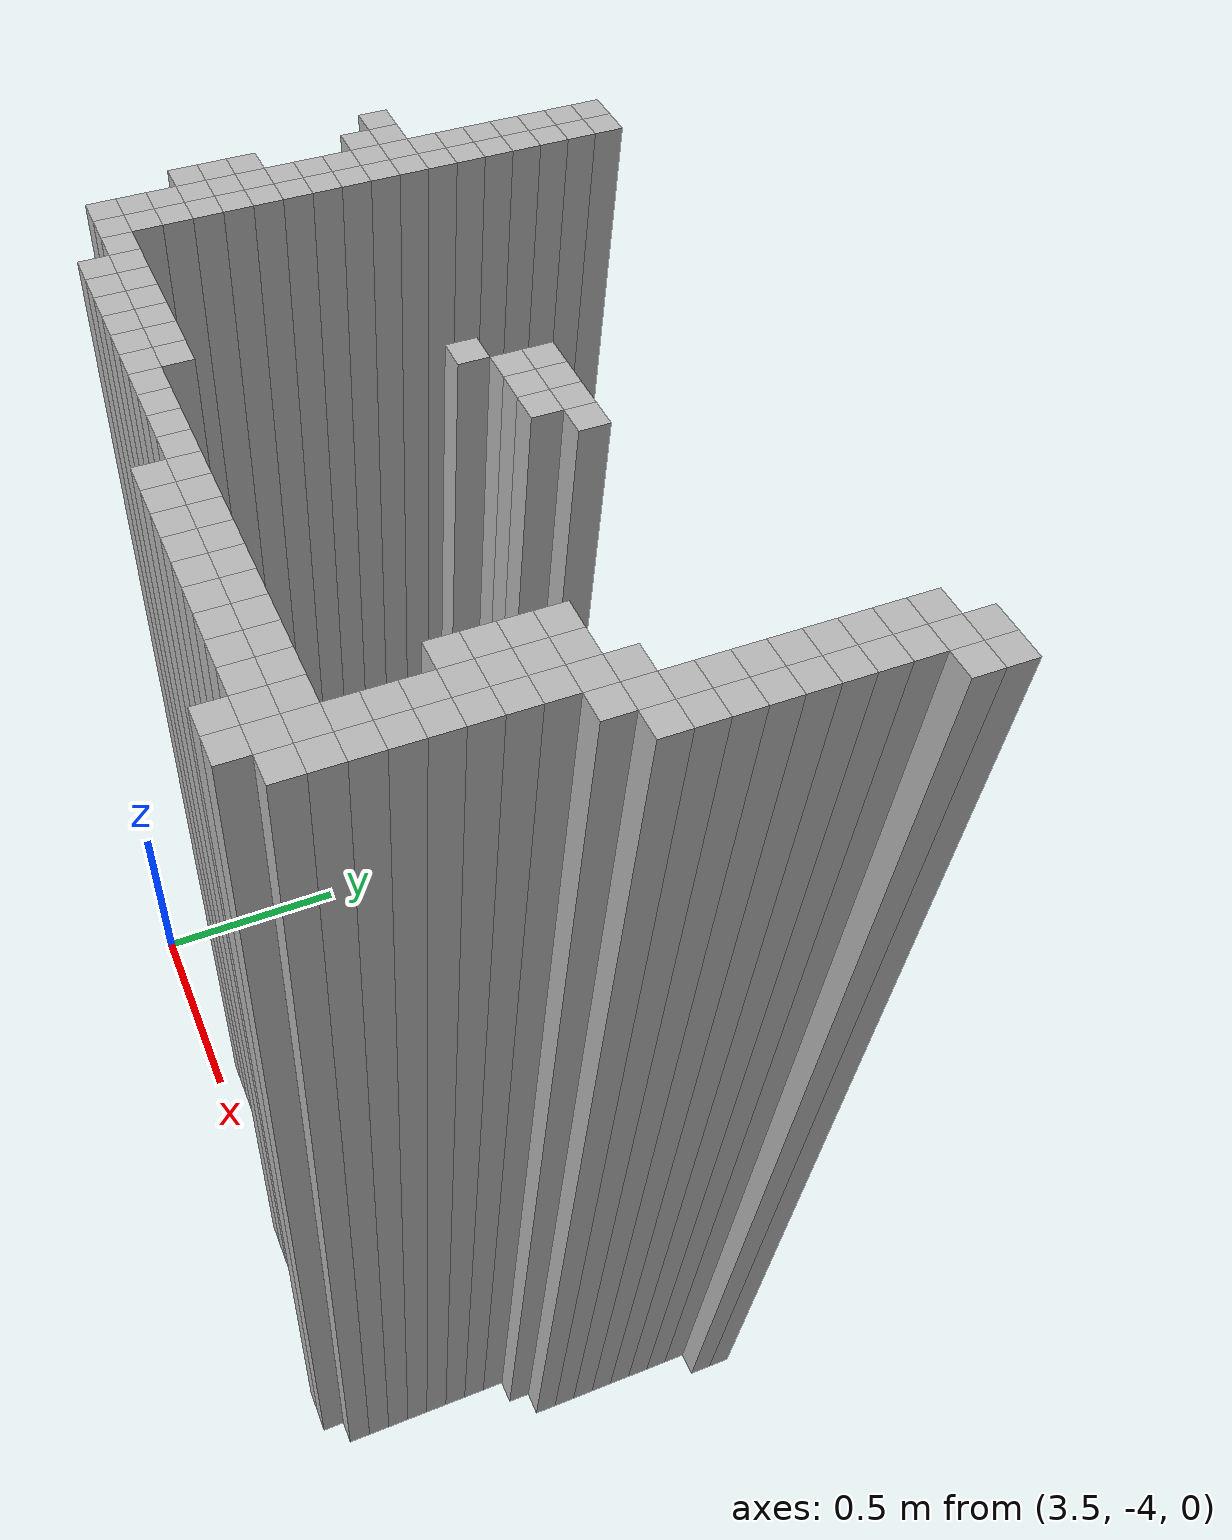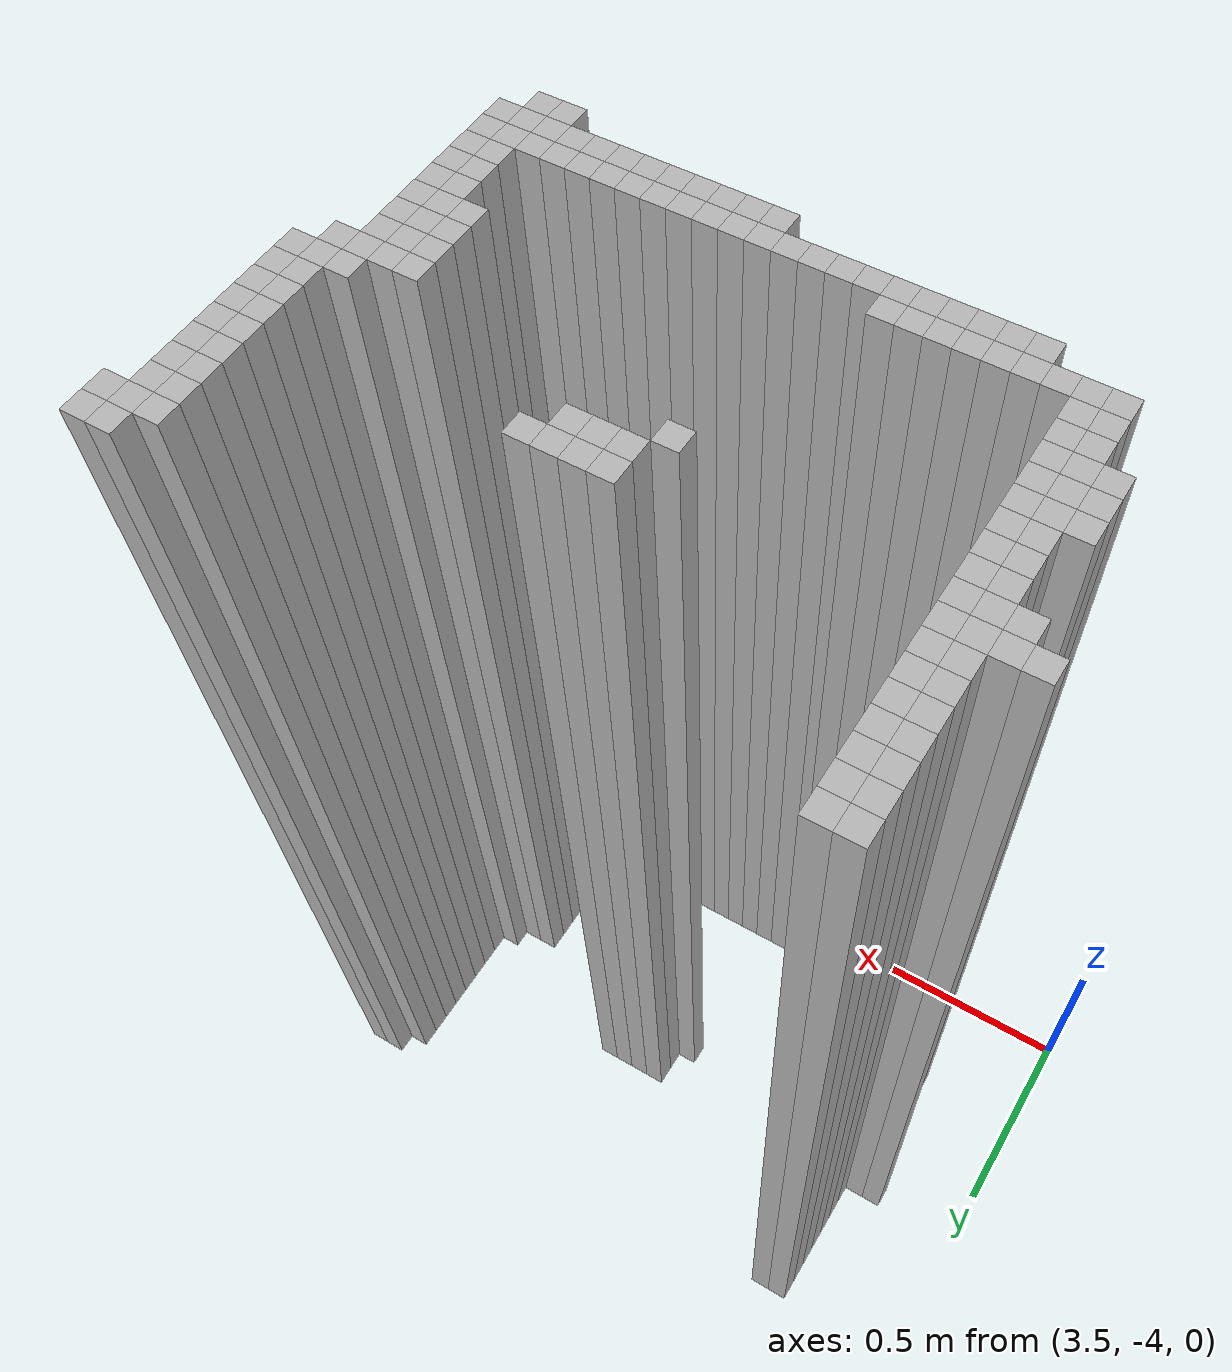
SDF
<sdf version="1.9">
 <world name="map_world">
  <model name="wall_300_214">
   <static>true</static>
   <pose>3.839 -3.020 1.250 0 0 0</pose>
   <link name="link">
    <collision name="collision"><geometry><box><size>0.050 0.050 2.500</size></box></geometry></collision>
    <visual name="visual"><geometry><box><size>0.050 0.050 2.500</size></box></geometry></visual>
   </link>
  </model>
  <model name="wall_301_214">
   <static>true</static>
   <pose>3.889 -3.020 1.250 0 0 0</pose>
   <link name="link">
    <collision name="collision"><geometry><box><size>0.050 0.050 2.500</size></box></geometry></collision>
    <visual name="visual"><geometry><box><size>0.050 0.050 2.500</size></box></geometry></visual>
   </link>
  </model>
  <model name="wall_300_215">
   <static>true</static>
   <pose>3.839 -3.070 1.250 0 0 0</pose>
   <link name="link">
    <collision name="collision"><geometry><box><size>0.050 0.050 2.500</size></box></geometry></collision>
    <visual name="visual"><geometry><box><size>0.050 0.050 2.500</size></box></geometry></visual>
   </link>
  </model>
  <model name="wall_301_215">
   <static>true</static>
   <pose>3.889 -3.070 1.250 0 0 0</pose>
   <link name="link">
    <collision name="collision"><geometry><box><size>0.050 0.050 2.500</size></box></geometry></collision>
    <visual name="visual"><geometry><box><size>0.050 0.050 2.500</size></box></geometry></visual>
   </link>
  </model>
  <model name="wall_326_215">
   <static>true</static>
   <pose>5.139 -3.070 1.250 0 0 0</pose>
   <link name="link">
    <collision name="collision"><geometry><box><size>0.050 0.050 2.500</size></box></geometry></collision>
    <visual name="visual"><geometry><box><size>0.050 0.050 2.500</size></box></geometry></visual>
   </link>
  </model>
  <model name="wall_327_215">
   <static>true</static>
   <pose>5.189 -3.070 1.250 0 0 0</pose>
   <link name="link">
    <collision name="collision"><geometry><box><size>0.050 0.050 2.500</size></box></geometry></collision>
    <visual name="visual"><geometry><box><size>0.050 0.050 2.500</size></box></geometry></visual>
   </link>
  </model>
  <model name="wall_300_216">
   <static>true</static>
   <pose>3.839 -3.120 1.250 0 0 0</pose>
   <link name="link">
    <collision name="collision"><geometry><box><size>0.050 0.050 2.500</size></box></geometry></collision>
    <visual name="visual"><geometry><box><size>0.050 0.050 2.500</size></box></geometry></visual>
   </link>
  </model>
  <model name="wall_301_216">
   <static>true</static>
   <pose>3.889 -3.120 1.250 0 0 0</pose>
   <link name="link">
    <collision name="collision"><geometry><box><size>0.050 0.050 2.500</size></box></geometry></collision>
    <visual name="visual"><geometry><box><size>0.050 0.050 2.500</size></box></geometry></visual>
   </link>
  </model>
  <model name="wall_325_216">
   <static>true</static>
   <pose>5.089 -3.120 1.250 0 0 0</pose>
   <link name="link">
    <collision name="collision"><geometry><box><size>0.050 0.050 2.500</size></box></geometry></collision>
    <visual name="visual"><geometry><box><size>0.050 0.050 2.500</size></box></geometry></visual>
   </link>
  </model>
  <model name="wall_326_216">
   <static>true</static>
   <pose>5.139 -3.120 1.250 0 0 0</pose>
   <link name="link">
    <collision name="collision"><geometry><box><size>0.050 0.050 2.500</size></box></geometry></collision>
    <visual name="visual"><geometry><box><size>0.050 0.050 2.500</size></box></geometry></visual>
   </link>
  </model>
  <model name="wall_327_216">
   <static>true</static>
   <pose>5.189 -3.120 1.250 0 0 0</pose>
   <link name="link">
    <collision name="collision"><geometry><box><size>0.050 0.050 2.500</size></box></geometry></collision>
    <visual name="visual"><geometry><box><size>0.050 0.050 2.500</size></box></geometry></visual>
   </link>
  </model>
  <model name="wall_300_217">
   <static>true</static>
   <pose>3.839 -3.170 1.250 0 0 0</pose>
   <link name="link">
    <collision name="collision"><geometry><box><size>0.050 0.050 2.500</size></box></geometry></collision>
    <visual name="visual"><geometry><box><size>0.050 0.050 2.500</size></box></geometry></visual>
   </link>
  </model>
  <model name="wall_301_217">
   <static>true</static>
   <pose>3.889 -3.170 1.250 0 0 0</pose>
   <link name="link">
    <collision name="collision"><geometry><box><size>0.050 0.050 2.500</size></box></geometry></collision>
    <visual name="visual"><geometry><box><size>0.050 0.050 2.500</size></box></geometry></visual>
   </link>
  </model>
  <model name="wall_325_217">
   <static>true</static>
   <pose>5.089 -3.170 1.250 0 0 0</pose>
   <link name="link">
    <collision name="collision"><geometry><box><size>0.050 0.050 2.500</size></box></geometry></collision>
    <visual name="visual"><geometry><box><size>0.050 0.050 2.500</size></box></geometry></visual>
   </link>
  </model>
  <model name="wall_326_217">
   <static>true</static>
   <pose>5.139 -3.170 1.250 0 0 0</pose>
   <link name="link">
    <collision name="collision"><geometry><box><size>0.050 0.050 2.500</size></box></geometry></collision>
    <visual name="visual"><geometry><box><size>0.050 0.050 2.500</size></box></geometry></visual>
   </link>
  </model>
  <model name="wall_300_218">
   <static>true</static>
   <pose>3.839 -3.220 1.250 0 0 0</pose>
   <link name="link">
    <collision name="collision"><geometry><box><size>0.050 0.050 2.500</size></box></geometry></collision>
    <visual name="visual"><geometry><box><size>0.050 0.050 2.500</size></box></geometry></visual>
   </link>
  </model>
  <model name="wall_301_218">
   <static>true</static>
   <pose>3.889 -3.220 1.250 0 0 0</pose>
   <link name="link">
    <collision name="collision"><geometry><box><size>0.050 0.050 2.500</size></box></geometry></collision>
    <visual name="visual"><geometry><box><size>0.050 0.050 2.500</size></box></geometry></visual>
   </link>
  </model>
  <model name="wall_325_218">
   <static>true</static>
   <pose>5.089 -3.220 1.250 0 0 0</pose>
   <link name="link">
    <collision name="collision"><geometry><box><size>0.050 0.050 2.500</size></box></geometry></collision>
    <visual name="visual"><geometry><box><size>0.050 0.050 2.500</size></box></geometry></visual>
   </link>
  </model>
  <model name="wall_326_218">
   <static>true</static>
   <pose>5.139 -3.220 1.250 0 0 0</pose>
   <link name="link">
    <collision name="collision"><geometry><box><size>0.050 0.050 2.500</size></box></geometry></collision>
    <visual name="visual"><geometry><box><size>0.050 0.050 2.500</size></box></geometry></visual>
   </link>
  </model>
  <model name="wall_300_219">
   <static>true</static>
   <pose>3.839 -3.270 1.250 0 0 0</pose>
   <link name="link">
    <collision name="collision"><geometry><box><size>0.050 0.050 2.500</size></box></geometry></collision>
    <visual name="visual"><geometry><box><size>0.050 0.050 2.500</size></box></geometry></visual>
   </link>
  </model>
  <model name="wall_301_219">
   <static>true</static>
   <pose>3.889 -3.270 1.250 0 0 0</pose>
   <link name="link">
    <collision name="collision"><geometry><box><size>0.050 0.050 2.500</size></box></geometry></collision>
    <visual name="visual"><geometry><box><size>0.050 0.050 2.500</size></box></geometry></visual>
   </link>
  </model>
  <model name="wall_325_219">
   <static>true</static>
   <pose>5.089 -3.270 1.250 0 0 0</pose>
   <link name="link">
    <collision name="collision"><geometry><box><size>0.050 0.050 2.500</size></box></geometry></collision>
    <visual name="visual"><geometry><box><size>0.050 0.050 2.500</size></box></geometry></visual>
   </link>
  </model>
  <model name="wall_326_219">
   <static>true</static>
   <pose>5.139 -3.270 1.250 0 0 0</pose>
   <link name="link">
    <collision name="collision"><geometry><box><size>0.050 0.050 2.500</size></box></geometry></collision>
    <visual name="visual"><geometry><box><size>0.050 0.050 2.500</size></box></geometry></visual>
   </link>
  </model>
  <model name="wall_300_220">
   <static>true</static>
   <pose>3.839 -3.320 1.250 0 0 0</pose>
   <link name="link">
    <collision name="collision"><geometry><box><size>0.050 0.050 2.500</size></box></geometry></collision>
    <visual name="visual"><geometry><box><size>0.050 0.050 2.500</size></box></geometry></visual>
   </link>
  </model>
  <model name="wall_301_220">
   <static>true</static>
   <pose>3.889 -3.320 1.250 0 0 0</pose>
   <link name="link">
    <collision name="collision"><geometry><box><size>0.050 0.050 2.500</size></box></geometry></collision>
    <visual name="visual"><geometry><box><size>0.050 0.050 2.500</size></box></geometry></visual>
   </link>
  </model>
  <model name="wall_325_220">
   <static>true</static>
   <pose>5.089 -3.320 1.250 0 0 0</pose>
   <link name="link">
    <collision name="collision"><geometry><box><size>0.050 0.050 2.500</size></box></geometry></collision>
    <visual name="visual"><geometry><box><size>0.050 0.050 2.500</size></box></geometry></visual>
   </link>
  </model>
  <model name="wall_326_220">
   <static>true</static>
   <pose>5.139 -3.320 1.250 0 0 0</pose>
   <link name="link">
    <collision name="collision"><geometry><box><size>0.050 0.050 2.500</size></box></geometry></collision>
    <visual name="visual"><geometry><box><size>0.050 0.050 2.500</size></box></geometry></visual>
   </link>
  </model>
  <model name="wall_298_221">
   <static>true</static>
   <pose>3.739 -3.370 1.250 0 0 0</pose>
   <link name="link">
    <collision name="collision"><geometry><box><size>0.050 0.050 2.500</size></box></geometry></collision>
    <visual name="visual"><geometry><box><size>0.050 0.050 2.500</size></box></geometry></visual>
   </link>
  </model>
  <model name="wall_299_221">
   <static>true</static>
   <pose>3.789 -3.370 1.250 0 0 0</pose>
   <link name="link">
    <collision name="collision"><geometry><box><size>0.050 0.050 2.500</size></box></geometry></collision>
    <visual name="visual"><geometry><box><size>0.050 0.050 2.500</size></box></geometry></visual>
   </link>
  </model>
  <model name="wall_300_221">
   <static>true</static>
   <pose>3.839 -3.370 1.250 0 0 0</pose>
   <link name="link">
    <collision name="collision"><geometry><box><size>0.050 0.050 2.500</size></box></geometry></collision>
    <visual name="visual"><geometry><box><size>0.050 0.050 2.500</size></box></geometry></visual>
   </link>
  </model>
  <model name="wall_301_221">
   <static>true</static>
   <pose>3.889 -3.370 1.250 0 0 0</pose>
   <link name="link">
    <collision name="collision"><geometry><box><size>0.050 0.050 2.500</size></box></geometry></collision>
    <visual name="visual"><geometry><box><size>0.050 0.050 2.500</size></box></geometry></visual>
   </link>
  </model>
  <model name="wall_312_221">
   <static>true</static>
   <pose>4.439 -3.370 1.250 0 0 0</pose>
   <link name="link">
    <collision name="collision"><geometry><box><size>0.050 0.050 2.500</size></box></geometry></collision>
    <visual name="visual"><geometry><box><size>0.050 0.050 2.500</size></box></geometry></visual>
   </link>
  </model>
  <model name="wall_313_221">
   <static>true</static>
   <pose>4.489 -3.370 1.250 0 0 0</pose>
   <link name="link">
    <collision name="collision"><geometry><box><size>0.050 0.050 2.500</size></box></geometry></collision>
    <visual name="visual"><geometry><box><size>0.050 0.050 2.500</size></box></geometry></visual>
   </link>
  </model>
  <model name="wall_314_221">
   <static>true</static>
   <pose>4.539 -3.370 1.250 0 0 0</pose>
   <link name="link">
    <collision name="collision"><geometry><box><size>0.050 0.050 2.500</size></box></geometry></collision>
    <visual name="visual"><geometry><box><size>0.050 0.050 2.500</size></box></geometry></visual>
   </link>
  </model>
  <model name="wall_315_221">
   <static>true</static>
   <pose>4.589 -3.370 1.250 0 0 0</pose>
   <link name="link">
    <collision name="collision"><geometry><box><size>0.050 0.050 2.500</size></box></geometry></collision>
    <visual name="visual"><geometry><box><size>0.050 0.050 2.500</size></box></geometry></visual>
   </link>
  </model>
  <model name="wall_325_221">
   <static>true</static>
   <pose>5.089 -3.370 1.250 0 0 0</pose>
   <link name="link">
    <collision name="collision"><geometry><box><size>0.050 0.050 2.500</size></box></geometry></collision>
    <visual name="visual"><geometry><box><size>0.050 0.050 2.500</size></box></geometry></visual>
   </link>
  </model>
  <model name="wall_326_221">
   <static>true</static>
   <pose>5.139 -3.370 1.250 0 0 0</pose>
   <link name="link">
    <collision name="collision"><geometry><box><size>0.050 0.050 2.500</size></box></geometry></collision>
    <visual name="visual"><geometry><box><size>0.050 0.050 2.500</size></box></geometry></visual>
   </link>
  </model>
  <model name="wall_299_222">
   <static>true</static>
   <pose>3.789 -3.420 1.250 0 0 0</pose>
   <link name="link">
    <collision name="collision"><geometry><box><size>0.050 0.050 2.500</size></box></geometry></collision>
    <visual name="visual"><geometry><box><size>0.050 0.050 2.500</size></box></geometry></visual>
   </link>
  </model>
  <model name="wall_300_222">
   <static>true</static>
   <pose>3.839 -3.420 1.250 0 0 0</pose>
   <link name="link">
    <collision name="collision"><geometry><box><size>0.050 0.050 2.500</size></box></geometry></collision>
    <visual name="visual"><geometry><box><size>0.050 0.050 2.500</size></box></geometry></visual>
   </link>
  </model>
  <model name="wall_301_222">
   <static>true</static>
   <pose>3.889 -3.420 1.250 0 0 0</pose>
   <link name="link">
    <collision name="collision"><geometry><box><size>0.050 0.050 2.500</size></box></geometry></collision>
    <visual name="visual"><geometry><box><size>0.050 0.050 2.500</size></box></geometry></visual>
   </link>
  </model>
  <model name="wall_312_222">
   <static>true</static>
   <pose>4.439 -3.420 1.250 0 0 0</pose>
   <link name="link">
    <collision name="collision"><geometry><box><size>0.050 0.050 2.500</size></box></geometry></collision>
    <visual name="visual"><geometry><box><size>0.050 0.050 2.500</size></box></geometry></visual>
   </link>
  </model>
  <model name="wall_313_222">
   <static>true</static>
   <pose>4.489 -3.420 1.250 0 0 0</pose>
   <link name="link">
    <collision name="collision"><geometry><box><size>0.050 0.050 2.500</size></box></geometry></collision>
    <visual name="visual"><geometry><box><size>0.050 0.050 2.500</size></box></geometry></visual>
   </link>
  </model>
  <model name="wall_314_222">
   <static>true</static>
   <pose>4.539 -3.420 1.250 0 0 0</pose>
   <link name="link">
    <collision name="collision"><geometry><box><size>0.050 0.050 2.500</size></box></geometry></collision>
    <visual name="visual"><geometry><box><size>0.050 0.050 2.500</size></box></geometry></visual>
   </link>
  </model>
  <model name="wall_325_222">
   <static>true</static>
   <pose>5.089 -3.420 1.250 0 0 0</pose>
   <link name="link">
    <collision name="collision"><geometry><box><size>0.050 0.050 2.500</size></box></geometry></collision>
    <visual name="visual"><geometry><box><size>0.050 0.050 2.500</size></box></geometry></visual>
   </link>
  </model>
  <model name="wall_326_222">
   <static>true</static>
   <pose>5.139 -3.420 1.250 0 0 0</pose>
   <link name="link">
    <collision name="collision"><geometry><box><size>0.050 0.050 2.500</size></box></geometry></collision>
    <visual name="visual"><geometry><box><size>0.050 0.050 2.500</size></box></geometry></visual>
   </link>
  </model>
  <model name="wall_300_223">
   <static>true</static>
   <pose>3.839 -3.470 1.250 0 0 0</pose>
   <link name="link">
    <collision name="collision"><geometry><box><size>0.050 0.050 2.500</size></box></geometry></collision>
    <visual name="visual"><geometry><box><size>0.050 0.050 2.500</size></box></geometry></visual>
   </link>
  </model>
  <model name="wall_301_223">
   <static>true</static>
   <pose>3.889 -3.470 1.250 0 0 0</pose>
   <link name="link">
    <collision name="collision"><geometry><box><size>0.050 0.050 2.500</size></box></geometry></collision>
    <visual name="visual"><geometry><box><size>0.050 0.050 2.500</size></box></geometry></visual>
   </link>
  </model>
  <model name="wall_311_223">
   <static>true</static>
   <pose>4.389 -3.470 1.250 0 0 0</pose>
   <link name="link">
    <collision name="collision"><geometry><box><size>0.050 0.050 2.500</size></box></geometry></collision>
    <visual name="visual"><geometry><box><size>0.050 0.050 2.500</size></box></geometry></visual>
   </link>
  </model>
  <model name="wall_325_223">
   <static>true</static>
   <pose>5.089 -3.470 1.250 0 0 0</pose>
   <link name="link">
    <collision name="collision"><geometry><box><size>0.050 0.050 2.500</size></box></geometry></collision>
    <visual name="visual"><geometry><box><size>0.050 0.050 2.500</size></box></geometry></visual>
   </link>
  </model>
  <model name="wall_326_223">
   <static>true</static>
   <pose>5.139 -3.470 1.250 0 0 0</pose>
   <link name="link">
    <collision name="collision"><geometry><box><size>0.050 0.050 2.500</size></box></geometry></collision>
    <visual name="visual"><geometry><box><size>0.050 0.050 2.500</size></box></geometry></visual>
   </link>
  </model>
  <model name="wall_300_224">
   <static>true</static>
   <pose>3.839 -3.520 1.250 0 0 0</pose>
   <link name="link">
    <collision name="collision"><geometry><box><size>0.050 0.050 2.500</size></box></geometry></collision>
    <visual name="visual"><geometry><box><size>0.050 0.050 2.500</size></box></geometry></visual>
   </link>
  </model>
  <model name="wall_301_224">
   <static>true</static>
   <pose>3.889 -3.520 1.250 0 0 0</pose>
   <link name="link">
    <collision name="collision"><geometry><box><size>0.050 0.050 2.500</size></box></geometry></collision>
    <visual name="visual"><geometry><box><size>0.050 0.050 2.500</size></box></geometry></visual>
   </link>
  </model>
  <model name="wall_324_224">
   <static>true</static>
   <pose>5.039 -3.520 1.250 0 0 0</pose>
   <link name="link">
    <collision name="collision"><geometry><box><size>0.050 0.050 2.500</size></box></geometry></collision>
    <visual name="visual"><geometry><box><size>0.050 0.050 2.500</size></box></geometry></visual>
   </link>
  </model>
  <model name="wall_325_224">
   <static>true</static>
   <pose>5.089 -3.520 1.250 0 0 0</pose>
   <link name="link">
    <collision name="collision"><geometry><box><size>0.050 0.050 2.500</size></box></geometry></collision>
    <visual name="visual"><geometry><box><size>0.050 0.050 2.500</size></box></geometry></visual>
   </link>
  </model>
  <model name="wall_326_224">
   <static>true</static>
   <pose>5.139 -3.520 1.250 0 0 0</pose>
   <link name="link">
    <collision name="collision"><geometry><box><size>0.050 0.050 2.500</size></box></geometry></collision>
    <visual name="visual"><geometry><box><size>0.050 0.050 2.500</size></box></geometry></visual>
   </link>
  </model>
  <model name="wall_300_225">
   <static>true</static>
   <pose>3.839 -3.570 1.250 0 0 0</pose>
   <link name="link">
    <collision name="collision"><geometry><box><size>0.050 0.050 2.500</size></box></geometry></collision>
    <visual name="visual"><geometry><box><size>0.050 0.050 2.500</size></box></geometry></visual>
   </link>
  </model>
  <model name="wall_301_225">
   <static>true</static>
   <pose>3.889 -3.570 1.250 0 0 0</pose>
   <link name="link">
    <collision name="collision"><geometry><box><size>0.050 0.050 2.500</size></box></geometry></collision>
    <visual name="visual"><geometry><box><size>0.050 0.050 2.500</size></box></geometry></visual>
   </link>
  </model>
  <model name="wall_322_225">
   <static>true</static>
   <pose>4.939 -3.570 1.250 0 0 0</pose>
   <link name="link">
    <collision name="collision"><geometry><box><size>0.050 0.050 2.500</size></box></geometry></collision>
    <visual name="visual"><geometry><box><size>0.050 0.050 2.500</size></box></geometry></visual>
   </link>
  </model>
  <model name="wall_323_225">
   <static>true</static>
   <pose>4.989 -3.570 1.250 0 0 0</pose>
   <link name="link">
    <collision name="collision"><geometry><box><size>0.050 0.050 2.500</size></box></geometry></collision>
    <visual name="visual"><geometry><box><size>0.050 0.050 2.500</size></box></geometry></visual>
   </link>
  </model>
  <model name="wall_324_225">
   <static>true</static>
   <pose>5.039 -3.570 1.250 0 0 0</pose>
   <link name="link">
    <collision name="collision"><geometry><box><size>0.050 0.050 2.500</size></box></geometry></collision>
    <visual name="visual"><geometry><box><size>0.050 0.050 2.500</size></box></geometry></visual>
   </link>
  </model>
  <model name="wall_325_225">
   <static>true</static>
   <pose>5.089 -3.570 1.250 0 0 0</pose>
   <link name="link">
    <collision name="collision"><geometry><box><size>0.050 0.050 2.500</size></box></geometry></collision>
    <visual name="visual"><geometry><box><size>0.050 0.050 2.500</size></box></geometry></visual>
   </link>
  </model>
  <model name="wall_299_226">
   <static>true</static>
   <pose>3.789 -3.620 1.250 0 0 0</pose>
   <link name="link">
    <collision name="collision"><geometry><box><size>0.050 0.050 2.500</size></box></geometry></collision>
    <visual name="visual"><geometry><box><size>0.050 0.050 2.500</size></box></geometry></visual>
   </link>
  </model>
  <model name="wall_300_226">
   <static>true</static>
   <pose>3.839 -3.620 1.250 0 0 0</pose>
   <link name="link">
    <collision name="collision"><geometry><box><size>0.050 0.050 2.500</size></box></geometry></collision>
    <visual name="visual"><geometry><box><size>0.050 0.050 2.500</size></box></geometry></visual>
   </link>
  </model>
  <model name="wall_301_226">
   <static>true</static>
   <pose>3.889 -3.620 1.250 0 0 0</pose>
   <link name="link">
    <collision name="collision"><geometry><box><size>0.050 0.050 2.500</size></box></geometry></collision>
    <visual name="visual"><geometry><box><size>0.050 0.050 2.500</size></box></geometry></visual>
   </link>
  </model>
  <model name="wall_322_226">
   <static>true</static>
   <pose>4.939 -3.620 1.250 0 0 0</pose>
   <link name="link">
    <collision name="collision"><geometry><box><size>0.050 0.050 2.500</size></box></geometry></collision>
    <visual name="visual"><geometry><box><size>0.050 0.050 2.500</size></box></geometry></visual>
   </link>
  </model>
  <model name="wall_323_226">
   <static>true</static>
   <pose>4.989 -3.620 1.250 0 0 0</pose>
   <link name="link">
    <collision name="collision"><geometry><box><size>0.050 0.050 2.500</size></box></geometry></collision>
    <visual name="visual"><geometry><box><size>0.050 0.050 2.500</size></box></geometry></visual>
   </link>
  </model>
  <model name="wall_324_226">
   <static>true</static>
   <pose>5.039 -3.620 1.250 0 0 0</pose>
   <link name="link">
    <collision name="collision"><geometry><box><size>0.050 0.050 2.500</size></box></geometry></collision>
    <visual name="visual"><geometry><box><size>0.050 0.050 2.500</size></box></geometry></visual>
   </link>
  </model>
  <model name="wall_299_227">
   <static>true</static>
   <pose>3.789 -3.670 1.250 0 0 0</pose>
   <link name="link">
    <collision name="collision"><geometry><box><size>0.050 0.050 2.500</size></box></geometry></collision>
    <visual name="visual"><geometry><box><size>0.050 0.050 2.500</size></box></geometry></visual>
   </link>
  </model>
  <model name="wall_300_227">
   <static>true</static>
   <pose>3.839 -3.670 1.250 0 0 0</pose>
   <link name="link">
    <collision name="collision"><geometry><box><size>0.050 0.050 2.500</size></box></geometry></collision>
    <visual name="visual"><geometry><box><size>0.050 0.050 2.500</size></box></geometry></visual>
   </link>
  </model>
  <model name="wall_301_227">
   <static>true</static>
   <pose>3.889 -3.670 1.250 0 0 0</pose>
   <link name="link">
    <collision name="collision"><geometry><box><size>0.050 0.050 2.500</size></box></geometry></collision>
    <visual name="visual"><geometry><box><size>0.050 0.050 2.500</size></box></geometry></visual>
   </link>
  </model>
  <model name="wall_322_227">
   <static>true</static>
   <pose>4.939 -3.670 1.250 0 0 0</pose>
   <link name="link">
    <collision name="collision"><geometry><box><size>0.050 0.050 2.500</size></box></geometry></collision>
    <visual name="visual"><geometry><box><size>0.050 0.050 2.500</size></box></geometry></visual>
   </link>
  </model>
  <model name="wall_323_227">
   <static>true</static>
   <pose>4.989 -3.670 1.250 0 0 0</pose>
   <link name="link">
    <collision name="collision"><geometry><box><size>0.050 0.050 2.500</size></box></geometry></collision>
    <visual name="visual"><geometry><box><size>0.050 0.050 2.500</size></box></geometry></visual>
   </link>
  </model>
  <model name="wall_324_227">
   <static>true</static>
   <pose>5.039 -3.670 1.250 0 0 0</pose>
   <link name="link">
    <collision name="collision"><geometry><box><size>0.050 0.050 2.500</size></box></geometry></collision>
    <visual name="visual"><geometry><box><size>0.050 0.050 2.500</size></box></geometry></visual>
   </link>
  </model>
  <model name="wall_299_228">
   <static>true</static>
   <pose>3.789 -3.720 1.250 0 0 0</pose>
   <link name="link">
    <collision name="collision"><geometry><box><size>0.050 0.050 2.500</size></box></geometry></collision>
    <visual name="visual"><geometry><box><size>0.050 0.050 2.500</size></box></geometry></visual>
   </link>
  </model>
  <model name="wall_300_228">
   <static>true</static>
   <pose>3.839 -3.720 1.250 0 0 0</pose>
   <link name="link">
    <collision name="collision"><geometry><box><size>0.050 0.050 2.500</size></box></geometry></collision>
    <visual name="visual"><geometry><box><size>0.050 0.050 2.500</size></box></geometry></visual>
   </link>
  </model>
  <model name="wall_301_228">
   <static>true</static>
   <pose>3.889 -3.720 1.250 0 0 0</pose>
   <link name="link">
    <collision name="collision"><geometry><box><size>0.050 0.050 2.500</size></box></geometry></collision>
    <visual name="visual"><geometry><box><size>0.050 0.050 2.500</size></box></geometry></visual>
   </link>
  </model>
  <model name="wall_322_228">
   <static>true</static>
   <pose>4.939 -3.720 1.250 0 0 0</pose>
   <link name="link">
    <collision name="collision"><geometry><box><size>0.050 0.050 2.500</size></box></geometry></collision>
    <visual name="visual"><geometry><box><size>0.050 0.050 2.500</size></box></geometry></visual>
   </link>
  </model>
  <model name="wall_323_228">
   <static>true</static>
   <pose>4.989 -3.720 1.250 0 0 0</pose>
   <link name="link">
    <collision name="collision"><geometry><box><size>0.050 0.050 2.500</size></box></geometry></collision>
    <visual name="visual"><geometry><box><size>0.050 0.050 2.500</size></box></geometry></visual>
   </link>
  </model>
  <model name="wall_324_228">
   <static>true</static>
   <pose>5.039 -3.720 1.250 0 0 0</pose>
   <link name="link">
    <collision name="collision"><geometry><box><size>0.050 0.050 2.500</size></box></geometry></collision>
    <visual name="visual"><geometry><box><size>0.050 0.050 2.500</size></box></geometry></visual>
   </link>
  </model>
  <model name="wall_300_229">
   <static>true</static>
   <pose>3.839 -3.770 1.250 0 0 0</pose>
   <link name="link">
    <collision name="collision"><geometry><box><size>0.050 0.050 2.500</size></box></geometry></collision>
    <visual name="visual"><geometry><box><size>0.050 0.050 2.500</size></box></geometry></visual>
   </link>
  </model>
  <model name="wall_301_229">
   <static>true</static>
   <pose>3.889 -3.770 1.250 0 0 0</pose>
   <link name="link">
    <collision name="collision"><geometry><box><size>0.050 0.050 2.500</size></box></geometry></collision>
    <visual name="visual"><geometry><box><size>0.050 0.050 2.500</size></box></geometry></visual>
   </link>
  </model>
  <model name="wall_323_229">
   <static>true</static>
   <pose>4.989 -3.770 1.250 0 0 0</pose>
   <link name="link">
    <collision name="collision"><geometry><box><size>0.050 0.050 2.500</size></box></geometry></collision>
    <visual name="visual"><geometry><box><size>0.050 0.050 2.500</size></box></geometry></visual>
   </link>
  </model>
  <model name="wall_324_229">
   <static>true</static>
   <pose>5.039 -3.770 1.250 0 0 0</pose>
   <link name="link">
    <collision name="collision"><geometry><box><size>0.050 0.050 2.500</size></box></geometry></collision>
    <visual name="visual"><geometry><box><size>0.050 0.050 2.500</size></box></geometry></visual>
   </link>
  </model>
  <model name="wall_300_230">
   <static>true</static>
   <pose>3.839 -3.820 1.250 0 0 0</pose>
   <link name="link">
    <collision name="collision"><geometry><box><size>0.050 0.050 2.500</size></box></geometry></collision>
    <visual name="visual"><geometry><box><size>0.050 0.050 2.500</size></box></geometry></visual>
   </link>
  </model>
  <model name="wall_301_230">
   <static>true</static>
   <pose>3.889 -3.820 1.250 0 0 0</pose>
   <link name="link">
    <collision name="collision"><geometry><box><size>0.050 0.050 2.500</size></box></geometry></collision>
    <visual name="visual"><geometry><box><size>0.050 0.050 2.500</size></box></geometry></visual>
   </link>
  </model>
  <model name="wall_323_230">
   <static>true</static>
   <pose>4.989 -3.820 1.250 0 0 0</pose>
   <link name="link">
    <collision name="collision"><geometry><box><size>0.050 0.050 2.500</size></box></geometry></collision>
    <visual name="visual"><geometry><box><size>0.050 0.050 2.500</size></box></geometry></visual>
   </link>
  </model>
  <model name="wall_324_230">
   <static>true</static>
   <pose>5.039 -3.820 1.250 0 0 0</pose>
   <link name="link">
    <collision name="collision"><geometry><box><size>0.050 0.050 2.500</size></box></geometry></collision>
    <visual name="visual"><geometry><box><size>0.050 0.050 2.500</size></box></geometry></visual>
   </link>
  </model>
  <model name="wall_300_231">
   <static>true</static>
   <pose>3.839 -3.870 1.250 0 0 0</pose>
   <link name="link">
    <collision name="collision"><geometry><box><size>0.050 0.050 2.500</size></box></geometry></collision>
    <visual name="visual"><geometry><box><size>0.050 0.050 2.500</size></box></geometry></visual>
   </link>
  </model>
  <model name="wall_301_231">
   <static>true</static>
   <pose>3.889 -3.870 1.250 0 0 0</pose>
   <link name="link">
    <collision name="collision"><geometry><box><size>0.050 0.050 2.500</size></box></geometry></collision>
    <visual name="visual"><geometry><box><size>0.050 0.050 2.500</size></box></geometry></visual>
   </link>
  </model>
  <model name="wall_302_231">
   <static>true</static>
   <pose>3.939 -3.870 1.250 0 0 0</pose>
   <link name="link">
    <collision name="collision"><geometry><box><size>0.050 0.050 2.500</size></box></geometry></collision>
    <visual name="visual"><geometry><box><size>0.050 0.050 2.500</size></box></geometry></visual>
   </link>
  </model>
  <model name="wall_303_231">
   <static>true</static>
   <pose>3.989 -3.870 1.250 0 0 0</pose>
   <link name="link">
    <collision name="collision"><geometry><box><size>0.050 0.050 2.500</size></box></geometry></collision>
    <visual name="visual"><geometry><box><size>0.050 0.050 2.500</size></box></geometry></visual>
   </link>
  </model>
  <model name="wall_304_231">
   <static>true</static>
   <pose>4.039 -3.870 1.250 0 0 0</pose>
   <link name="link">
    <collision name="collision"><geometry><box><size>0.050 0.050 2.500</size></box></geometry></collision>
    <visual name="visual"><geometry><box><size>0.050 0.050 2.500</size></box></geometry></visual>
   </link>
  </model>
  <model name="wall_305_231">
   <static>true</static>
   <pose>4.089 -3.870 1.250 0 0 0</pose>
   <link name="link">
    <collision name="collision"><geometry><box><size>0.050 0.050 2.500</size></box></geometry></collision>
    <visual name="visual"><geometry><box><size>0.050 0.050 2.500</size></box></geometry></visual>
   </link>
  </model>
  <model name="wall_306_231">
   <static>true</static>
   <pose>4.139 -3.870 1.250 0 0 0</pose>
   <link name="link">
    <collision name="collision"><geometry><box><size>0.050 0.050 2.500</size></box></geometry></collision>
    <visual name="visual"><geometry><box><size>0.050 0.050 2.500</size></box></geometry></visual>
   </link>
  </model>
  <model name="wall_307_231">
   <static>true</static>
   <pose>4.189 -3.870 1.250 0 0 0</pose>
   <link name="link">
    <collision name="collision"><geometry><box><size>0.050 0.050 2.500</size></box></geometry></collision>
    <visual name="visual"><geometry><box><size>0.050 0.050 2.500</size></box></geometry></visual>
   </link>
  </model>
  <model name="wall_308_231">
   <static>true</static>
   <pose>4.239 -3.870 1.250 0 0 0</pose>
   <link name="link">
    <collision name="collision"><geometry><box><size>0.050 0.050 2.500</size></box></geometry></collision>
    <visual name="visual"><geometry><box><size>0.050 0.050 2.500</size></box></geometry></visual>
   </link>
  </model>
  <model name="wall_323_231">
   <static>true</static>
   <pose>4.989 -3.870 1.250 0 0 0</pose>
   <link name="link">
    <collision name="collision"><geometry><box><size>0.050 0.050 2.500</size></box></geometry></collision>
    <visual name="visual"><geometry><box><size>0.050 0.050 2.500</size></box></geometry></visual>
   </link>
  </model>
  <model name="wall_324_231">
   <static>true</static>
   <pose>5.039 -3.870 1.250 0 0 0</pose>
   <link name="link">
    <collision name="collision"><geometry><box><size>0.050 0.050 2.500</size></box></geometry></collision>
    <visual name="visual"><geometry><box><size>0.050 0.050 2.500</size></box></geometry></visual>
   </link>
  </model>
  <model name="wall_303_232">
   <static>true</static>
   <pose>3.989 -3.920 1.250 0 0 0</pose>
   <link name="link">
    <collision name="collision"><geometry><box><size>0.050 0.050 2.500</size></box></geometry></collision>
    <visual name="visual"><geometry><box><size>0.050 0.050 2.500</size></box></geometry></visual>
   </link>
  </model>
  <model name="wall_304_232">
   <static>true</static>
   <pose>4.039 -3.920 1.250 0 0 0</pose>
   <link name="link">
    <collision name="collision"><geometry><box><size>0.050 0.050 2.500</size></box></geometry></collision>
    <visual name="visual"><geometry><box><size>0.050 0.050 2.500</size></box></geometry></visual>
   </link>
  </model>
  <model name="wall_305_232">
   <static>true</static>
   <pose>4.089 -3.920 1.250 0 0 0</pose>
   <link name="link">
    <collision name="collision"><geometry><box><size>0.050 0.050 2.500</size></box></geometry></collision>
    <visual name="visual"><geometry><box><size>0.050 0.050 2.500</size></box></geometry></visual>
   </link>
  </model>
  <model name="wall_306_232">
   <static>true</static>
   <pose>4.139 -3.920 1.250 0 0 0</pose>
   <link name="link">
    <collision name="collision"><geometry><box><size>0.050 0.050 2.500</size></box></geometry></collision>
    <visual name="visual"><geometry><box><size>0.050 0.050 2.500</size></box></geometry></visual>
   </link>
  </model>
  <model name="wall_307_232">
   <static>true</static>
   <pose>4.189 -3.920 1.250 0 0 0</pose>
   <link name="link">
    <collision name="collision"><geometry><box><size>0.050 0.050 2.500</size></box></geometry></collision>
    <visual name="visual"><geometry><box><size>0.050 0.050 2.500</size></box></geometry></visual>
   </link>
  </model>
  <model name="wall_308_232">
   <static>true</static>
   <pose>4.239 -3.920 1.250 0 0 0</pose>
   <link name="link">
    <collision name="collision"><geometry><box><size>0.050 0.050 2.500</size></box></geometry></collision>
    <visual name="visual"><geometry><box><size>0.050 0.050 2.500</size></box></geometry></visual>
   </link>
  </model>
  <model name="wall_309_232">
   <static>true</static>
   <pose>4.289 -3.920 1.250 0 0 0</pose>
   <link name="link">
    <collision name="collision"><geometry><box><size>0.050 0.050 2.500</size></box></geometry></collision>
    <visual name="visual"><geometry><box><size>0.050 0.050 2.500</size></box></geometry></visual>
   </link>
  </model>
  <model name="wall_310_232">
   <static>true</static>
   <pose>4.339 -3.920 1.250 0 0 0</pose>
   <link name="link">
    <collision name="collision"><geometry><box><size>0.050 0.050 2.500</size></box></geometry></collision>
    <visual name="visual"><geometry><box><size>0.050 0.050 2.500</size></box></geometry></visual>
   </link>
  </model>
  <model name="wall_311_232">
   <static>true</static>
   <pose>4.389 -3.920 1.250 0 0 0</pose>
   <link name="link">
    <collision name="collision"><geometry><box><size>0.050 0.050 2.500</size></box></geometry></collision>
    <visual name="visual"><geometry><box><size>0.050 0.050 2.500</size></box></geometry></visual>
   </link>
  </model>
  <model name="wall_312_232">
   <static>true</static>
   <pose>4.439 -3.920 1.250 0 0 0</pose>
   <link name="link">
    <collision name="collision"><geometry><box><size>0.050 0.050 2.500</size></box></geometry></collision>
    <visual name="visual"><geometry><box><size>0.050 0.050 2.500</size></box></geometry></visual>
   </link>
  </model>
  <model name="wall_313_232">
   <static>true</static>
   <pose>4.489 -3.920 1.250 0 0 0</pose>
   <link name="link">
    <collision name="collision"><geometry><box><size>0.050 0.050 2.500</size></box></geometry></collision>
    <visual name="visual"><geometry><box><size>0.050 0.050 2.500</size></box></geometry></visual>
   </link>
  </model>
  <model name="wall_314_232">
   <static>true</static>
   <pose>4.539 -3.920 1.250 0 0 0</pose>
   <link name="link">
    <collision name="collision"><geometry><box><size>0.050 0.050 2.500</size></box></geometry></collision>
    <visual name="visual"><geometry><box><size>0.050 0.050 2.500</size></box></geometry></visual>
   </link>
  </model>
  <model name="wall_315_232">
   <static>true</static>
   <pose>4.589 -3.920 1.250 0 0 0</pose>
   <link name="link">
    <collision name="collision"><geometry><box><size>0.050 0.050 2.500</size></box></geometry></collision>
    <visual name="visual"><geometry><box><size>0.050 0.050 2.500</size></box></geometry></visual>
   </link>
  </model>
  <model name="wall_316_232">
   <static>true</static>
   <pose>4.639 -3.920 1.250 0 0 0</pose>
   <link name="link">
    <collision name="collision"><geometry><box><size>0.050 0.050 2.500</size></box></geometry></collision>
    <visual name="visual"><geometry><box><size>0.050 0.050 2.500</size></box></geometry></visual>
   </link>
  </model>
  <model name="wall_317_232">
   <static>true</static>
   <pose>4.689 -3.920 1.250 0 0 0</pose>
   <link name="link">
    <collision name="collision"><geometry><box><size>0.050 0.050 2.500</size></box></geometry></collision>
    <visual name="visual"><geometry><box><size>0.050 0.050 2.500</size></box></geometry></visual>
   </link>
  </model>
  <model name="wall_318_232">
   <static>true</static>
   <pose>4.739 -3.920 1.250 0 0 0</pose>
   <link name="link">
    <collision name="collision"><geometry><box><size>0.050 0.050 2.500</size></box></geometry></collision>
    <visual name="visual"><geometry><box><size>0.050 0.050 2.500</size></box></geometry></visual>
   </link>
  </model>
  <model name="wall_319_232">
   <static>true</static>
   <pose>4.789 -3.920 1.250 0 0 0</pose>
   <link name="link">
    <collision name="collision"><geometry><box><size>0.050 0.050 2.500</size></box></geometry></collision>
    <visual name="visual"><geometry><box><size>0.050 0.050 2.500</size></box></geometry></visual>
   </link>
  </model>
  <model name="wall_320_232">
   <static>true</static>
   <pose>4.839 -3.920 1.250 0 0 0</pose>
   <link name="link">
    <collision name="collision"><geometry><box><size>0.050 0.050 2.500</size></box></geometry></collision>
    <visual name="visual"><geometry><box><size>0.050 0.050 2.500</size></box></geometry></visual>
   </link>
  </model>
  <model name="wall_321_232">
   <static>true</static>
   <pose>4.889 -3.920 1.250 0 0 0</pose>
   <link name="link">
    <collision name="collision"><geometry><box><size>0.050 0.050 2.500</size></box></geometry></collision>
    <visual name="visual"><geometry><box><size>0.050 0.050 2.500</size></box></geometry></visual>
   </link>
  </model>
  <model name="wall_322_232">
   <static>true</static>
   <pose>4.939 -3.920 1.250 0 0 0</pose>
   <link name="link">
    <collision name="collision"><geometry><box><size>0.050 0.050 2.500</size></box></geometry></collision>
    <visual name="visual"><geometry><box><size>0.050 0.050 2.500</size></box></geometry></visual>
   </link>
  </model>
  <model name="wall_323_232">
   <static>true</static>
   <pose>4.989 -3.920 1.250 0 0 0</pose>
   <link name="link">
    <collision name="collision"><geometry><box><size>0.050 0.050 2.500</size></box></geometry></collision>
    <visual name="visual"><geometry><box><size>0.050 0.050 2.500</size></box></geometry></visual>
   </link>
  </model>
  <model name="wall_324_232">
   <static>true</static>
   <pose>5.039 -3.920 1.250 0 0 0</pose>
   <link name="link">
    <collision name="collision"><geometry><box><size>0.050 0.050 2.500</size></box></geometry></collision>
    <visual name="visual"><geometry><box><size>0.050 0.050 2.500</size></box></geometry></visual>
   </link>
  </model>
  <model name="wall_313_233">
   <static>true</static>
   <pose>4.489 -3.970 1.250 0 0 0</pose>
   <link name="link">
    <collision name="collision"><geometry><box><size>0.050 0.050 2.500</size></box></geometry></collision>
    <visual name="visual"><geometry><box><size>0.050 0.050 2.500</size></box></geometry></visual>
   </link>
  </model>
  <model name="wall_314_233">
   <static>true</static>
   <pose>4.539 -3.970 1.250 0 0 0</pose>
   <link name="link">
    <collision name="collision"><geometry><box><size>0.050 0.050 2.500</size></box></geometry></collision>
    <visual name="visual"><geometry><box><size>0.050 0.050 2.500</size></box></geometry></visual>
   </link>
  </model>
  <model name="wall_315_233">
   <static>true</static>
   <pose>4.589 -3.970 1.250 0 0 0</pose>
   <link name="link">
    <collision name="collision"><geometry><box><size>0.050 0.050 2.500</size></box></geometry></collision>
    <visual name="visual"><geometry><box><size>0.050 0.050 2.500</size></box></geometry></visual>
   </link>
  </model>
  <model name="wall_316_233">
   <static>true</static>
   <pose>4.639 -3.970 1.250 0 0 0</pose>
   <link name="link">
    <collision name="collision"><geometry><box><size>0.050 0.050 2.500</size></box></geometry></collision>
    <visual name="visual"><geometry><box><size>0.050 0.050 2.500</size></box></geometry></visual>
   </link>
  </model>
  <model name="wall_317_233">
   <static>true</static>
   <pose>4.689 -3.970 1.250 0 0 0</pose>
   <link name="link">
    <collision name="collision"><geometry><box><size>0.050 0.050 2.500</size></box></geometry></collision>
    <visual name="visual"><geometry><box><size>0.050 0.050 2.500</size></box></geometry></visual>
   </link>
  </model>
  <model name="wall_318_233">
   <static>true</static>
   <pose>4.739 -3.970 1.250 0 0 0</pose>
   <link name="link">
    <collision name="collision"><geometry><box><size>0.050 0.050 2.500</size></box></geometry></collision>
    <visual name="visual"><geometry><box><size>0.050 0.050 2.500</size></box></geometry></visual>
   </link>
  </model>
  <model name="wall_319_233">
   <static>true</static>
   <pose>4.789 -3.970 1.250 0 0 0</pose>
   <link name="link">
    <collision name="collision"><geometry><box><size>0.050 0.050 2.500</size></box></geometry></collision>
    <visual name="visual"><geometry><box><size>0.050 0.050 2.500</size></box></geometry></visual>
   </link>
  </model>
  <model name="wall_320_233">
   <static>true</static>
   <pose>4.839 -3.970 1.250 0 0 0</pose>
   <link name="link">
    <collision name="collision"><geometry><box><size>0.050 0.050 2.500</size></box></geometry></collision>
    <visual name="visual"><geometry><box><size>0.050 0.050 2.500</size></box></geometry></visual>
   </link>
  </model>
  <model name="wall_321_233">
   <static>true</static>
   <pose>4.889 -3.970 1.250 0 0 0</pose>
   <link name="link">
    <collision name="collision"><geometry><box><size>0.050 0.050 2.500</size></box></geometry></collision>
    <visual name="visual"><geometry><box><size>0.050 0.050 2.500</size></box></geometry></visual>
   </link>
  </model>
  <model name="wall_322_233">
   <static>true</static>
   <pose>4.939 -3.970 1.250 0 0 0</pose>
   <link name="link">
    <collision name="collision"><geometry><box><size>0.050 0.050 2.500</size></box></geometry></collision>
    <visual name="visual"><geometry><box><size>0.050 0.050 2.500</size></box></geometry></visual>
   </link>
  </model>
  <model name="wall_323_233">
   <static>true</static>
   <pose>4.989 -3.970 1.250 0 0 0</pose>
   <link name="link">
    <collision name="collision"><geometry><box><size>0.050 0.050 2.500</size></box></geometry></collision>
    <visual name="visual"><geometry><box><size>0.050 0.050 2.500</size></box></geometry></visual>
   </link>
  </model>
  <model name="wall_324_233">
   <static>true</static>
   <pose>5.039 -3.970 1.250 0 0 0</pose>
   <link name="link">
    <collision name="collision"><geometry><box><size>0.050 0.050 2.500</size></box></geometry></collision>
    <visual name="visual"><geometry><box><size>0.050 0.050 2.500</size></box></geometry></visual>
   </link>
  </model>
  <model name="wall_322_234">
   <static>true</static>
   <pose>4.939 -4.020 1.250 0 0 0</pose>
   <link name="link">
    <collision name="collision"><geometry><box><size>0.050 0.050 2.500</size></box></geometry></collision>
    <visual name="visual"><geometry><box><size>0.050 0.050 2.500</size></box></geometry></visual>
   </link>
  </model>
  <model name="wall_323_234">
   <static>true</static>
   <pose>4.989 -4.020 1.250 0 0 0</pose>
   <link name="link">
    <collision name="collision"><geometry><box><size>0.050 0.050 2.500</size></box></geometry></collision>
    <visual name="visual"><geometry><box><size>0.050 0.050 2.500</size></box></geometry></visual>
   </link>
  </model>
 </world>
</sdf>
